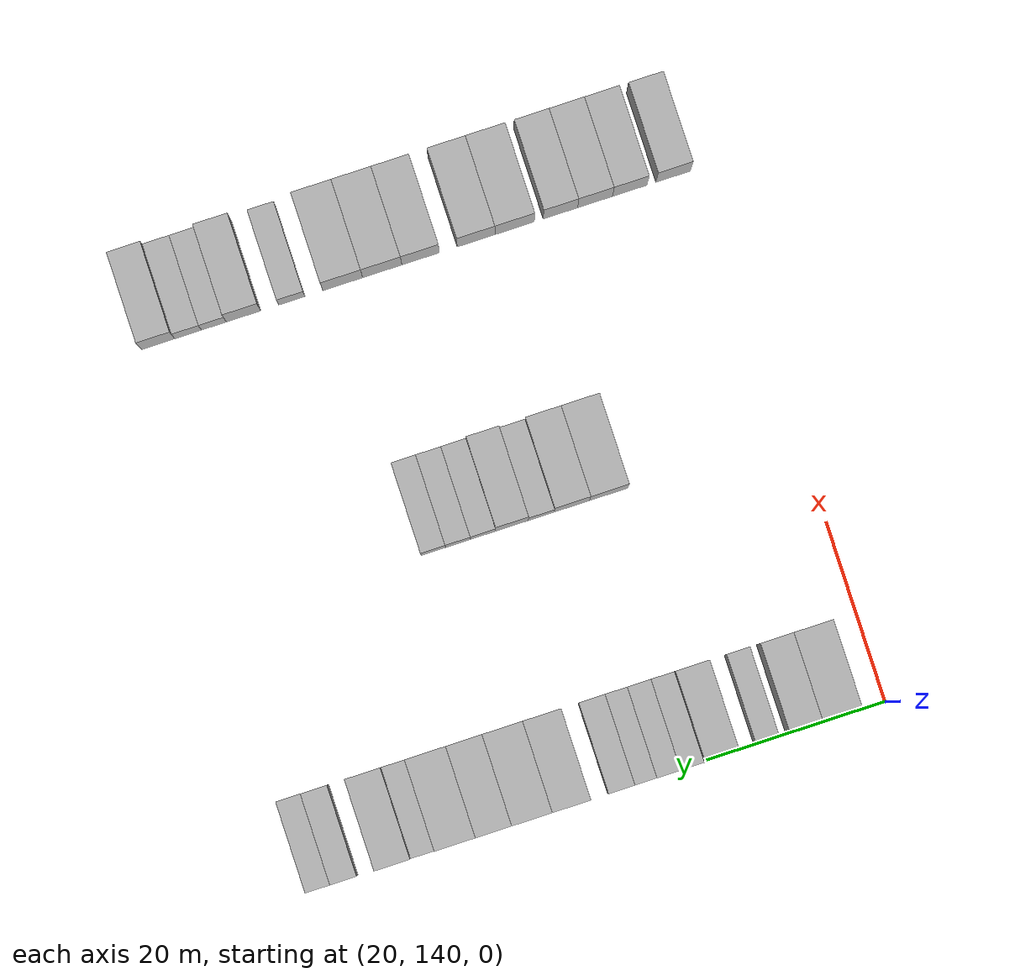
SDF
<sdf version="1.6">
 <world name="default">
  <model name="building_153">
   <static>1</static>
   <pose>25.0000 145.3161 0 0.000000 0.000000 0.000000</pose>
   <link name="link">
    <pose>0 0 4.50 0 0 0</pose>
    <collision name="collision"><geometry><box><size>10.0000 4.3440 9.0000</size></box></geometry></collision>
    <visual name="visual">
     <cast_shadows>0</cast_shadows>
     <geometry><box><size>10.0000 4.3440 9.0000</size></box></geometry>
     <material>
      <script>
       <uri>model://HANNAS_wall/materials/scripts</uri>
       <uri>model://HANNAS_wall/materials/textures</uri>
       <name>vrc/HANNAS_wall</name>
      </script>
     </material>
    </visual>
   </link>
  </model>
  <model name="building_154">
   <static>1</static>
   <pose>25.0000 149.3092 0 0.000000 0.000000 0.000000</pose>
   <link name="link">
    <pose>0 0 4.50 0 0 0</pose>
    <collision name="collision"><geometry><box><size>10.0000 3.6423 9.0000</size></box></geometry></collision>
    <visual name="visual">
     <cast_shadows>0</cast_shadows>
     <geometry><box><size>10.0000 3.6423 9.0000</size></box></geometry>
     <material>
      <script>
       <uri>model://HANNAS_wall/materials/scripts</uri>
       <uri>model://HANNAS_wall/materials/textures</uri>
       <name>vrc/HANNAS_wall</name>
      </script>
     </material>
    </visual>
   </link>
  </model>
  <model name="building_155">
   <static>1</static>
   <pose>25.0000 153.4134 0 0.000000 0.000000 0.000000</pose>
   <link name="link">
    <pose>0 0 3.00 0 0 0</pose>
    <collision name="collision"><geometry><box><size>10.0000 2.5661 6.0000</size></box></geometry></collision>
    <visual name="visual">
     <cast_shadows>0</cast_shadows>
     <geometry><box><size>10.0000 2.5661 6.0000</size></box></geometry>
     <material>
      <script>
       <uri>model://HANNAS_wall/materials/scripts</uri>
       <uri>model://HANNAS_wall/materials/textures</uri>
       <name>vrc/HANNAS_wall</name>
      </script>
     </material>
    </visual>
   </link>
  </model>
  <model name="building_156">
   <static>1</static>
   <pose>25.0000 158.5717 0 0.000000 0.000000 0.000000</pose>
   <link name="link">
    <pose>0 0 4.50 0 0 0</pose>
    <collision name="collision"><geometry><box><size>10.0000 3.7504 9.0000</size></box></geometry></collision>
    <visual name="visual">
     <cast_shadows>0</cast_shadows>
     <geometry><box><size>10.0000 3.7504 9.0000</size></box></geometry>
     <material>
      <script>
       <uri>model://HANNAS_wall/materials/scripts</uri>
       <uri>model://HANNAS_wall/materials/textures</uri>
       <name>vrc/HANNAS_wall</name>
      </script>
     </material>
    </visual>
   </link>
  </model>
  <model name="building_157">
   <static>1</static>
   <pose>25.0000 161.7484 0 0.000000 0.000000 0.000000</pose>
   <link name="link">
    <pose>0 0 3.00 0 0 0</pose>
    <collision name="collision"><geometry><box><size>10.0000 2.6029 6.0000</size></box></geometry></collision>
    <visual name="visual">
     <cast_shadows>0</cast_shadows>
     <geometry><box><size>10.0000 2.6029 6.0000</size></box></geometry>
     <material>
      <script>
       <uri>model://HANNAS_wall/materials/scripts</uri>
       <uri>model://HANNAS_wall/materials/textures</uri>
       <name>vrc/HANNAS_wall</name>
      </script>
     </material>
    </visual>
   </link>
  </model>
  <model name="building_158">
   <static>1</static>
   <pose>25.0000 164.3542 0 0.000000 0.000000 0.000000</pose>
   <link name="link">
    <pose>0 0 3.00 0 0 0</pose>
    <collision name="collision"><geometry><box><size>10.0000 2.6088 6.0000</size></box></geometry></collision>
    <visual name="visual">
     <cast_shadows>0</cast_shadows>
     <geometry><box><size>10.0000 2.6088 6.0000</size></box></geometry>
     <material>
      <script>
       <uri>model://HANNAS_wall/materials/scripts</uri>
       <uri>model://HANNAS_wall/materials/textures</uri>
       <name>vrc/HANNAS_wall</name>
      </script>
     </material>
    </visual>
   </link>
  </model>
  <model name="building_159">
   <static>1</static>
   <pose>25.0000 166.8739 0 0.000000 0.000000 0.000000</pose>
   <link name="link">
    <pose>0 0 3.00 0 0 0</pose>
    <collision name="collision"><geometry><box><size>10.0000 2.4306 6.0000</size></box></geometry></collision>
    <visual name="visual">
     <cast_shadows>0</cast_shadows>
     <geometry><box><size>10.0000 2.4306 6.0000</size></box></geometry>
     <material>
      <script>
       <uri>model://HANNAS_wall/materials/scripts</uri>
       <uri>model://HANNAS_wall/materials/textures</uri>
       <name>vrc/HANNAS_wall</name>
      </script>
     </material>
    </visual>
   </link>
  </model>
  <model name="building_160">
   <static>1</static>
   <pose>25.0000 169.5334 0 0.000000 0.000000 0.000000</pose>
   <link name="link">
    <pose>0 0 3.00 0 0 0</pose>
    <collision name="collision"><geometry><box><size>10.0000 2.8885 6.0000</size></box></geometry></collision>
    <visual name="visual">
     <cast_shadows>0</cast_shadows>
     <geometry><box><size>10.0000 2.8885 6.0000</size></box></geometry>
     <material>
      <script>
       <uri>model://HANNAS_wall/materials/scripts</uri>
       <uri>model://HANNAS_wall/materials/textures</uri>
       <name>vrc/HANNAS_wall</name>
      </script>
     </material>
    </visual>
   </link>
  </model>
  <model name="building_161">
   <static>1</static>
   <pose>25.0000 175.0830 0 0.000000 0.000000 0.000000</pose>
   <link name="link">
    <pose>0 0 4.50 0 0 0</pose>
    <collision name="collision"><geometry><box><size>10.0000 4.2106 9.0000</size></box></geometry></collision>
    <visual name="visual">
     <cast_shadows>0</cast_shadows>
     <geometry><box><size>10.0000 4.2106 9.0000</size></box></geometry>
     <material>
      <script>
       <uri>model://HANNAS_wall/materials/scripts</uri>
       <uri>model://HANNAS_wall/materials/textures</uri>
       <name>vrc/HANNAS_wall</name>
      </script>
     </material>
    </visual>
   </link>
  </model>
  <model name="building_162">
   <static>1</static>
   <pose>25.0000 179.4104 0 0.000000 0.000000 0.000000</pose>
   <link name="link">
    <pose>0 0 4.50 0 0 0</pose>
    <collision name="collision"><geometry><box><size>10.0000 4.4443 9.0000</size></box></geometry></collision>
    <visual name="visual">
     <cast_shadows>0</cast_shadows>
     <geometry><box><size>10.0000 4.4443 9.0000</size></box></geometry>
     <material>
      <script>
       <uri>model://HANNAS_wall/materials/scripts</uri>
       <uri>model://HANNAS_wall/materials/textures</uri>
       <name>vrc/HANNAS_wall</name>
      </script>
     </material>
    </visual>
   </link>
  </model>
  <model name="building_163">
   <static>1</static>
   <pose>25.0000 183.6202 0 0.000000 0.000000 0.000000</pose>
   <link name="link">
    <pose>0 0 4.50 0 0 0</pose>
    <collision name="collision"><geometry><box><size>10.0000 3.9752 9.0000</size></box></geometry></collision>
    <visual name="visual">
     <cast_shadows>0</cast_shadows>
     <geometry><box><size>10.0000 3.9752 9.0000</size></box></geometry>
     <material>
      <script>
       <uri>model://HANNAS_wall/materials/scripts</uri>
       <uri>model://HANNAS_wall/materials/textures</uri>
       <name>vrc/HANNAS_wall</name>
      </script>
     </material>
    </visual>
   </link>
  </model>
  <model name="building_164">
   <static>1</static>
   <pose>25.0000 187.8557 0 0.000000 0.000000 0.000000</pose>
   <link name="link">
    <pose>0 0 4.50 0 0 0</pose>
    <collision name="collision"><geometry><box><size>10.0000 4.4959 9.0000</size></box></geometry></collision>
    <visual name="visual">
     <cast_shadows>0</cast_shadows>
     <geometry><box><size>10.0000 4.4959 9.0000</size></box></geometry>
     <material>
      <script>
       <uri>model://HANNAS_wall/materials/scripts</uri>
       <uri>model://HANNAS_wall/materials/textures</uri>
       <name>vrc/HANNAS_wall</name>
      </script>
     </material>
    </visual>
   </link>
  </model>
  <model name="building_165">
   <static>1</static>
   <pose>25.0000 191.4259 0 0.000000 0.000000 0.000000</pose>
   <link name="link">
    <pose>0 0 3.00 0 0 0</pose>
    <collision name="collision"><geometry><box><size>10.0000 2.6445 6.0000</size></box></geometry></collision>
    <visual name="visual">
     <cast_shadows>0</cast_shadows>
     <geometry><box><size>10.0000 2.6445 6.0000</size></box></geometry>
     <material>
      <script>
       <uri>model://HANNAS_wall/materials/scripts</uri>
       <uri>model://HANNAS_wall/materials/textures</uri>
       <name>vrc/HANNAS_wall</name>
      </script>
     </material>
    </visual>
   </link>
  </model>
  <model name="building_166">
   <static>1</static>
   <pose>25.0000 194.7115 0 0.000000 0.000000 0.000000</pose>
   <link name="link">
    <pose>0 0 4.50 0 0 0</pose>
    <collision name="collision"><geometry><box><size>10.0000 3.9267 9.0000</size></box></geometry></collision>
    <visual name="visual">
     <cast_shadows>0</cast_shadows>
     <geometry><box><size>10.0000 3.9267 9.0000</size></box></geometry>
     <material>
      <script>
       <uri>model://HANNAS_wall/materials/scripts</uri>
       <uri>model://HANNAS_wall/materials/textures</uri>
       <name>vrc/HANNAS_wall</name>
      </script>
     </material>
    </visual>
   </link>
  </model>
  <model name="building_167">
   <static>1</static>
   <pose>25.0000 200.1403 0 0.000000 0.000000 0.000000</pose>
   <link name="link">
    <pose>0 0 3.00 0 0 0</pose>
    <collision name="collision"><geometry><box><size>10.0000 2.9309 6.0000</size></box></geometry></collision>
    <visual name="visual">
     <cast_shadows>0</cast_shadows>
     <geometry><box><size>10.0000 2.9309 6.0000</size></box></geometry>
     <material>
      <script>
       <uri>model://HANNAS_wall/materials/scripts</uri>
       <uri>model://HANNAS_wall/materials/textures</uri>
       <name>vrc/HANNAS_wall</name>
      </script>
     </material>
    </visual>
   </link>
  </model>
  <model name="building_168">
   <static>1</static>
   <pose>25.0000 202.9592 0 0.000000 0.000000 0.000000</pose>
   <link name="link">
    <pose>0 0 3.00 0 0 0</pose>
    <collision name="collision"><geometry><box><size>10.0000 2.7071 6.0000</size></box></geometry></collision>
    <visual name="visual">
     <cast_shadows>0</cast_shadows>
     <geometry><box><size>10.0000 2.7071 6.0000</size></box></geometry>
     <material>
      <script>
       <uri>model://HANNAS_wall/materials/scripts</uri>
       <uri>model://HANNAS_wall/materials/textures</uri>
       <name>vrc/HANNAS_wall</name>
      </script>
     </material>
    </visual>
   </link>
  </model>
  <model name="building_384">
   <static>1</static>
   <pose>55.0000 161.0288 0 0.000000 0.000000 0.000000</pose>
   <link name="link">
    <pose>0 0 4.50 0 0 0</pose>
    <collision name="collision"><geometry><box><size>10.0000 4.2197 9.0000</size></box></geometry></collision>
    <visual name="visual">
     <cast_shadows>0</cast_shadows>
     <geometry><box><size>10.0000 4.2197 9.0000</size></box></geometry>
     <material>
      <script>
       <uri>model://HANNAS_wall/materials/scripts</uri>
       <uri>model://HANNAS_wall/materials/textures</uri>
       <name>vrc/HANNAS_wall</name>
      </script>
     </material>
    </visual>
   </link>
  </model>
  <model name="building_385">
   <static>1</static>
   <pose>55.0000 165.1083 0 0.000000 0.000000 0.000000</pose>
   <link name="link">
    <pose>0 0 4.50 0 0 0</pose>
    <collision name="collision"><geometry><box><size>10.0000 3.9393 9.0000</size></box></geometry></collision>
    <visual name="visual">
     <cast_shadows>0</cast_shadows>
     <geometry><box><size>10.0000 3.9393 9.0000</size></box></geometry>
     <material>
      <script>
       <uri>model://HANNAS_wall/materials/scripts</uri>
       <uri>model://HANNAS_wall/materials/textures</uri>
       <name>vrc/HANNAS_wall</name>
      </script>
     </material>
    </visual>
   </link>
  </model>
  <model name="building_386">
   <static>1</static>
   <pose>55.0000 168.5179 0 0.000000 0.000000 0.000000</pose>
   <link name="link">
    <pose>0 0 3.00 0 0 0</pose>
    <collision name="collision"><geometry><box><size>10.0000 2.8799 6.0000</size></box></geometry></collision>
    <visual name="visual">
     <cast_shadows>0</cast_shadows>
     <geometry><box><size>10.0000 2.8799 6.0000</size></box></geometry>
     <material>
      <script>
       <uri>model://HANNAS_wall/materials/scripts</uri>
       <uri>model://HANNAS_wall/materials/textures</uri>
       <name>vrc/HANNAS_wall</name>
      </script>
     </material>
    </visual>
   </link>
  </model>
  <model name="building_387">
   <static>1</static>
   <pose>55.0000 171.7753 0 0.000000 0.000000 0.000000</pose>
   <link name="link">
    <pose>0 0 4.50 0 0 0</pose>
    <collision name="collision"><geometry><box><size>10.0000 3.6349 9.0000</size></box></geometry></collision>
    <visual name="visual">
     <cast_shadows>0</cast_shadows>
     <geometry><box><size>10.0000 3.6349 9.0000</size></box></geometry>
     <material>
      <script>
       <uri>model://HANNAS_wall/materials/scripts</uri>
       <uri>model://HANNAS_wall/materials/textures</uri>
       <name>vrc/HANNAS_wall</name>
      </script>
     </material>
    </visual>
   </link>
  </model>
  <model name="building_388">
   <static>1</static>
   <pose>55.0000 174.9915 0 0.000000 0.000000 0.000000</pose>
   <link name="link">
    <pose>0 0 3.00 0 0 0</pose>
    <collision name="collision"><geometry><box><size>10.0000 2.7974 6.0000</size></box></geometry></collision>
    <visual name="visual">
     <cast_shadows>0</cast_shadows>
     <geometry><box><size>10.0000 2.7974 6.0000</size></box></geometry>
     <material>
      <script>
       <uri>model://HANNAS_wall/materials/scripts</uri>
       <uri>model://HANNAS_wall/materials/textures</uri>
       <name>vrc/HANNAS_wall</name>
      </script>
     </material>
    </visual>
   </link>
  </model>
  <model name="building_389">
   <static>1</static>
   <pose>55.0000 177.7781 0 0.000000 0.000000 0.000000</pose>
   <link name="link">
    <pose>0 0 3.00 0 0 0</pose>
    <collision name="collision"><geometry><box><size>10.0000 2.7758 6.0000</size></box></geometry></collision>
    <visual name="visual">
     <cast_shadows>0</cast_shadows>
     <geometry><box><size>10.0000 2.7758 6.0000</size></box></geometry>
     <material>
      <script>
       <uri>model://HANNAS_wall/materials/scripts</uri>
       <uri>model://HANNAS_wall/materials/textures</uri>
       <name>vrc/HANNAS_wall</name>
      </script>
     </material>
    </visual>
   </link>
  </model>
  <model name="building_390">
   <static>1</static>
   <pose>55.0000 180.5239 0 0.000000 0.000000 0.000000</pose>
   <link name="link">
    <pose>0 0 3.00 0 0 0</pose>
    <collision name="collision"><geometry><box><size>10.0000 2.7158 6.0000</size></box></geometry></collision>
    <visual name="visual">
     <cast_shadows>0</cast_shadows>
     <geometry><box><size>10.0000 2.7158 6.0000</size></box></geometry>
     <material>
      <script>
       <uri>model://HANNAS_wall/materials/scripts</uri>
       <uri>model://HANNAS_wall/materials/textures</uri>
       <name>vrc/HANNAS_wall</name>
      </script>
     </material>
    </visual>
   </link>
  </model>
  <model name="building_596">
   <static>1</static>
   <pose>85.0000 143.9742 0 0.000000 0.000000 0.000000</pose>
   <link name="link">
    <pose>0 0 4.50 0 0 0</pose>
    <collision name="collision"><geometry><box><size>10.0000 3.8274 9.0000</size></box></geometry></collision>
    <visual name="visual">
     <cast_shadows>0</cast_shadows>
     <geometry><box><size>10.0000 3.8274 9.0000</size></box></geometry>
     <material>
      <script>
       <uri>model://HANNAS_wall/materials/scripts</uri>
       <uri>model://HANNAS_wall/materials/textures</uri>
       <name>vrc/HANNAS_wall</name>
      </script>
     </material>
    </visual>
   </link>
  </model>
  <model name="building_597">
   <static>1</static>
   <pose>85.0000 148.8152 0 0.000000 0.000000 0.000000</pose>
   <link name="link">
    <pose>0 0 4.50 0 0 0</pose>
    <collision name="collision"><geometry><box><size>10.0000 3.8546 9.0000</size></box></geometry></collision>
    <visual name="visual">
     <cast_shadows>0</cast_shadows>
     <geometry><box><size>10.0000 3.8546 9.0000</size></box></geometry>
     <material>
      <script>
       <uri>model://HANNAS_wall/materials/scripts</uri>
       <uri>model://HANNAS_wall/materials/textures</uri>
       <name>vrc/HANNAS_wall</name>
      </script>
     </material>
    </visual>
   </link>
  </model>
  <model name="building_598">
   <static>1</static>
   <pose>85.0000 152.6903 0 0.000000 0.000000 0.000000</pose>
   <link name="link">
    <pose>0 0 4.50 0 0 0</pose>
    <collision name="collision"><geometry><box><size>10.0000 3.8955 9.0000</size></box></geometry></collision>
    <visual name="visual">
     <cast_shadows>0</cast_shadows>
     <geometry><box><size>10.0000 3.8955 9.0000</size></box></geometry>
     <material>
      <script>
       <uri>model://HANNAS_wall/materials/scripts</uri>
       <uri>model://HANNAS_wall/materials/textures</uri>
       <name>vrc/HANNAS_wall</name>
      </script>
     </material>
    </visual>
   </link>
  </model>
  <model name="building_599">
   <static>1</static>
   <pose>85.0000 156.5601 0 0.000000 0.000000 0.000000</pose>
   <link name="link">
    <pose>0 0 4.50 0 0 0</pose>
    <collision name="collision"><geometry><box><size>10.0000 3.8442 9.0000</size></box></geometry></collision>
    <visual name="visual">
     <cast_shadows>0</cast_shadows>
     <geometry><box><size>10.0000 3.8442 9.0000</size></box></geometry>
     <material>
      <script>
       <uri>model://HANNAS_wall/materials/scripts</uri>
       <uri>model://HANNAS_wall/materials/textures</uri>
       <name>vrc/HANNAS_wall</name>
      </script>
     </material>
    </visual>
   </link>
  </model>
  <model name="building_600">
   <static>1</static>
   <pose>85.0000 161.6756 0 0.000000 0.000000 0.000000</pose>
   <link name="link">
    <pose>0 0 4.50 0 0 0</pose>
    <collision name="collision"><geometry><box><size>10.0000 4.3868 9.0000</size></box></geometry></collision>
    <visual name="visual">
     <cast_shadows>0</cast_shadows>
     <geometry><box><size>10.0000 4.3868 9.0000</size></box></geometry>
     <material>
      <script>
       <uri>model://HANNAS_wall/materials/scripts</uri>
       <uri>model://HANNAS_wall/materials/textures</uri>
       <name>vrc/HANNAS_wall</name>
      </script>
     </material>
    </visual>
   </link>
  </model>
  <model name="building_601">
   <static>1</static>
   <pose>85.0000 165.9763 0 0.000000 0.000000 0.000000</pose>
   <link name="link">
    <pose>0 0 4.50 0 0 0</pose>
    <collision name="collision"><geometry><box><size>10.0000 4.2147 9.0000</size></box></geometry></collision>
    <visual name="visual">
     <cast_shadows>0</cast_shadows>
     <geometry><box><size>10.0000 4.2147 9.0000</size></box></geometry>
     <material>
      <script>
       <uri>model://HANNAS_wall/materials/scripts</uri>
       <uri>model://HANNAS_wall/materials/textures</uri>
       <name>vrc/HANNAS_wall</name>
      </script>
     </material>
    </visual>
   </link>
  </model>
  <model name="building_602">
   <static>1</static>
   <pose>85.0000 172.1731 0 0.000000 0.000000 0.000000</pose>
   <link name="link">
    <pose>0 0 4.50 0 0 0</pose>
    <collision name="collision"><geometry><box><size>10.0000 4.1788 9.0000</size></box></geometry></collision>
    <visual name="visual">
     <cast_shadows>0</cast_shadows>
     <geometry><box><size>10.0000 4.1788 9.0000</size></box></geometry>
     <material>
      <script>
       <uri>model://HANNAS_wall/materials/scripts</uri>
       <uri>model://HANNAS_wall/materials/textures</uri>
       <name>vrc/HANNAS_wall</name>
      </script>
     </material>
    </visual>
   </link>
  </model>
  <model name="building_603">
   <static>1</static>
   <pose>85.0000 176.4473 0 0.000000 0.000000 0.000000</pose>
   <link name="link">
    <pose>0 0 4.50 0 0 0</pose>
    <collision name="collision"><geometry><box><size>10.0000 4.3696 9.0000</size></box></geometry></collision>
    <visual name="visual">
     <cast_shadows>0</cast_shadows>
     <geometry><box><size>10.0000 4.3696 9.0000</size></box></geometry>
     <material>
      <script>
       <uri>model://HANNAS_wall/materials/scripts</uri>
       <uri>model://HANNAS_wall/materials/textures</uri>
       <name>vrc/HANNAS_wall</name>
      </script>
     </material>
    </visual>
   </link>
  </model>
  <model name="building_604">
   <static>1</static>
   <pose>85.0000 180.8530 0 0.000000 0.000000 0.000000</pose>
   <link name="link">
    <pose>0 0 4.50 0 0 0</pose>
    <collision name="collision"><geometry><box><size>10.0000 4.4419 9.0000</size></box></geometry></collision>
    <visual name="visual">
     <cast_shadows>0</cast_shadows>
     <geometry><box><size>10.0000 4.4419 9.0000</size></box></geometry>
     <material>
      <script>
       <uri>model://HANNAS_wall/materials/scripts</uri>
       <uri>model://HANNAS_wall/materials/textures</uri>
       <name>vrc/HANNAS_wall</name>
      </script>
     </material>
    </visual>
   </link>
  </model>
  <model name="building_605">
   <static>1</static>
   <pose>85.0000 186.5425 0 0.000000 0.000000 0.000000</pose>
   <link name="link">
    <pose>0 0 3.00 0 0 0</pose>
    <collision name="collision"><geometry><box><size>10.0000 2.9371 6.0000</size></box></geometry></collision>
    <visual name="visual">
     <cast_shadows>0</cast_shadows>
     <geometry><box><size>10.0000 2.9371 6.0000</size></box></geometry>
     <material>
      <script>
       <uri>model://HANNAS_wall/materials/scripts</uri>
       <uri>model://HANNAS_wall/materials/textures</uri>
       <name>vrc/HANNAS_wall</name>
      </script>
     </material>
    </visual>
   </link>
  </model>
  <model name="building_606">
   <static>1</static>
   <pose>85.0000 191.9275 0 0.000000 0.000000 0.000000</pose>
   <link name="link">
    <pose>0 0 4.50 0 0 0</pose>
    <collision name="collision"><geometry><box><size>10.0000 3.8329 9.0000</size></box></geometry></collision>
    <visual name="visual">
     <cast_shadows>0</cast_shadows>
     <geometry><box><size>10.0000 3.8329 9.0000</size></box></geometry>
     <material>
      <script>
       <uri>model://HANNAS_wall/materials/scripts</uri>
       <uri>model://HANNAS_wall/materials/textures</uri>
       <name>vrc/HANNAS_wall</name>
      </script>
     </material>
    </visual>
   </link>
  </model>
  <model name="building_607">
   <static>1</static>
   <pose>85.0000 195.2311 0 0.000000 0.000000 0.000000</pose>
   <link name="link">
    <pose>0 0 3.00 0 0 0</pose>
    <collision name="collision"><geometry><box><size>10.0000 2.7745 6.0000</size></box></geometry></collision>
    <visual name="visual">
     <cast_shadows>0</cast_shadows>
     <geometry><box><size>10.0000 2.7745 6.0000</size></box></geometry>
     <material>
      <script>
       <uri>model://HANNAS_wall/materials/scripts</uri>
       <uri>model://HANNAS_wall/materials/textures</uri>
       <name>vrc/HANNAS_wall</name>
      </script>
     </material>
    </visual>
   </link>
  </model>
  <model name="building_608">
   <static>1</static>
   <pose>85.0000 198.1037 0 0.000000 0.000000 0.000000</pose>
   <link name="link">
    <pose>0 0 3.00 0 0 0</pose>
    <collision name="collision"><geometry><box><size>10.0000 2.9706 6.0000</size></box></geometry></collision>
    <visual name="visual">
     <cast_shadows>0</cast_shadows>
     <geometry><box><size>10.0000 2.9706 6.0000</size></box></geometry>
     <material>
      <script>
       <uri>model://HANNAS_wall/materials/scripts</uri>
       <uri>model://HANNAS_wall/materials/textures</uri>
       <name>vrc/HANNAS_wall</name>
      </script>
     </material>
    </visual>
   </link>
  </model>
  <model name="building_609">
   <static>1</static>
   <pose>85.0000 201.4388 0 0.000000 0.000000 0.000000</pose>
   <link name="link">
    <pose>0 0 4.50 0 0 0</pose>
    <collision name="collision"><geometry><box><size>10.0000 3.6997 9.0000</size></box></geometry></collision>
    <visual name="visual">
     <cast_shadows>0</cast_shadows>
     <geometry><box><size>10.0000 3.6997 9.0000</size></box></geometry>
     <material>
      <script>
       <uri>model://HANNAS_wall/materials/scripts</uri>
       <uri>model://HANNAS_wall/materials/textures</uri>
       <name>vrc/HANNAS_wall</name>
      </script>
     </material>
    </visual>
   </link>
  </model>
 </world>
</sdf>
